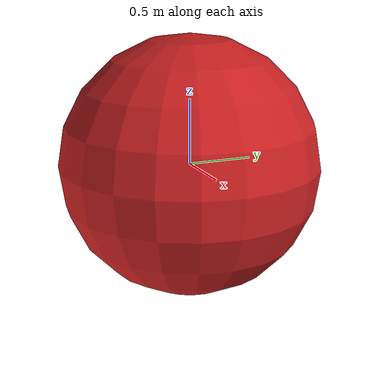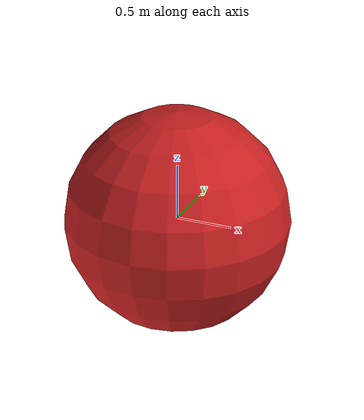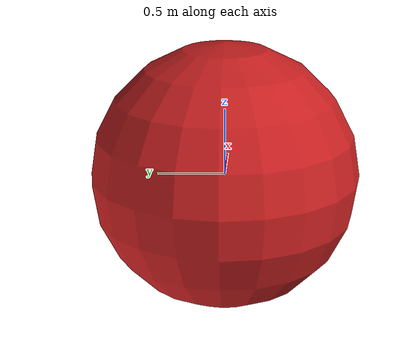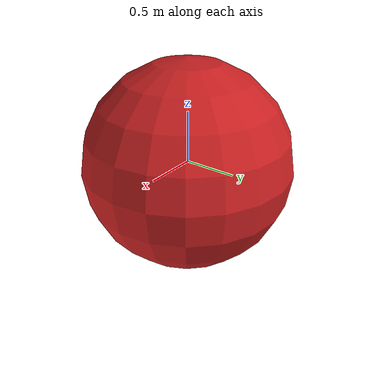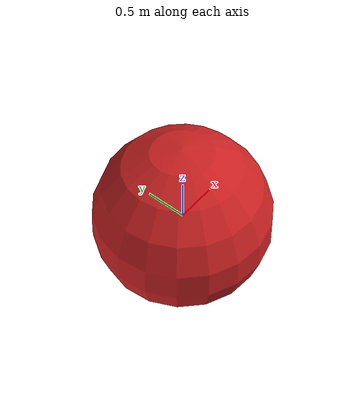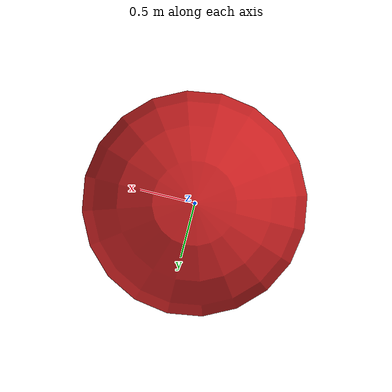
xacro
<?xml version="1.0" ?>
<robot name="name" xmlns:xacro="http://www.ros.org/wiki/xacro">

	<xacro:include filename="materials.xacro" />

	<link name="dummy">
		<visual name="dummy_visual">
			<geometry>
				<sphere radius="1"/>
			</geometry>
			<material name="red"/>
		</visual>
	</link>

	<joint name="dummy_joint" type="fixed" >
		<parent link="dummy" />
		<child link="base_link" />
		<origin xyz="0 0 0" rpy="0 0 0" />
	</joint>

	<link name="base_link">
		<visual name="base_link_visual">
			<geometry>
				<sphere radius="0.01"/>
			</geometry>
			<material name="blue"/>
		</visual>
	</link>

</robot>

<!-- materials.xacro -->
<robot name="my_robot" xmlns:xacro="https://www.ros.org/wiki/xacro" >

  <material name="black">
    <color rgba="0.0 0.0 0.0 1.0"/>
  </material>
  <material name="blue">
    <color rgba="0.203125 0.23828125 0.28515625 1.0"/>
  </material>
  <material name="green">
    <color rgba="0.0 0.8 0.0 1.0"/>
  </material>
  <material name="grey">
    <color rgba="0.2 0.2 0.2 1.0"/>
  </material>
  <material name="orange">
    <color rgba="1.0 0.423529411765 0.0392156862745 1.0"/>
  </material>
  <material name="brown">
    <color rgba="0.870588235294 0.811764705882 0.764705882353 1.0"/>
  </material>
  <material name="red">
    <color rgba="0.80078125 0.12890625 0.1328125 1.0"/>
  </material>
  <material name="white">
    <color rgba="1.0 1.0 1.0 1.0"/>
  </material>

</robot>
